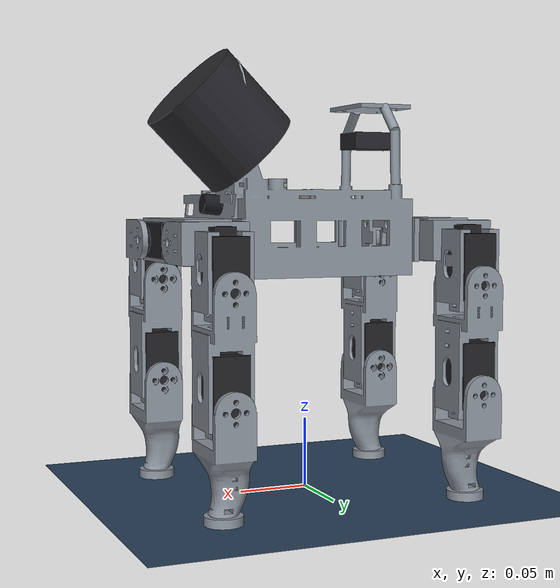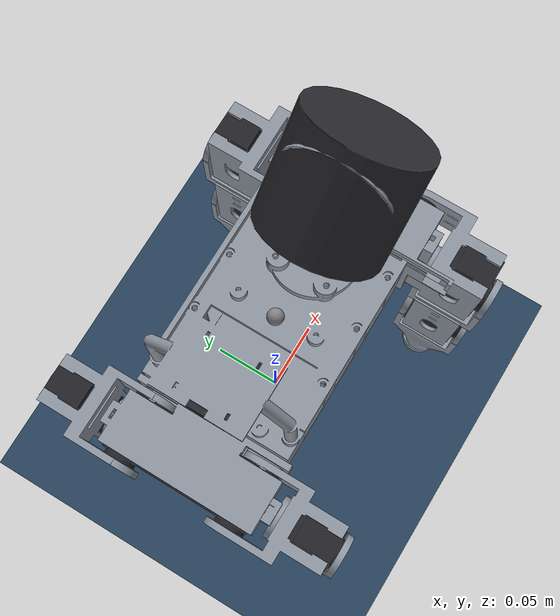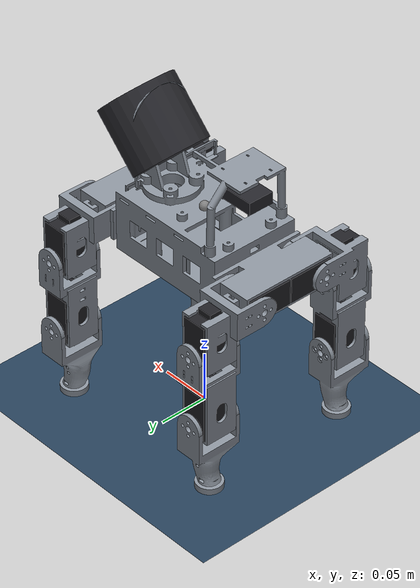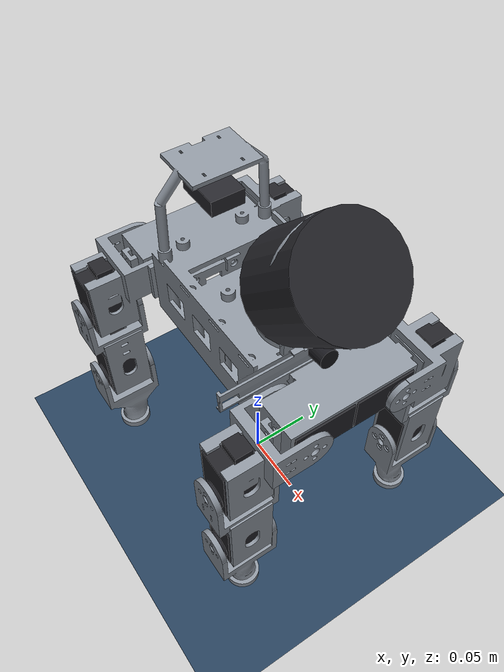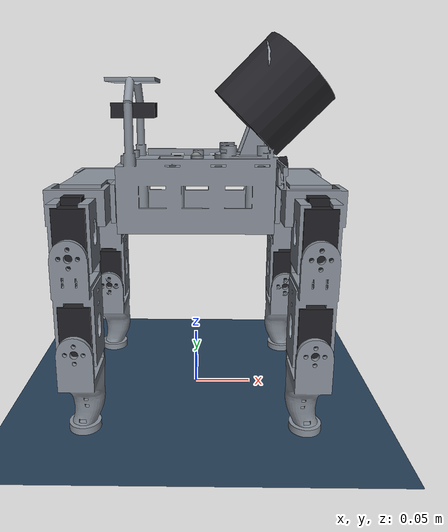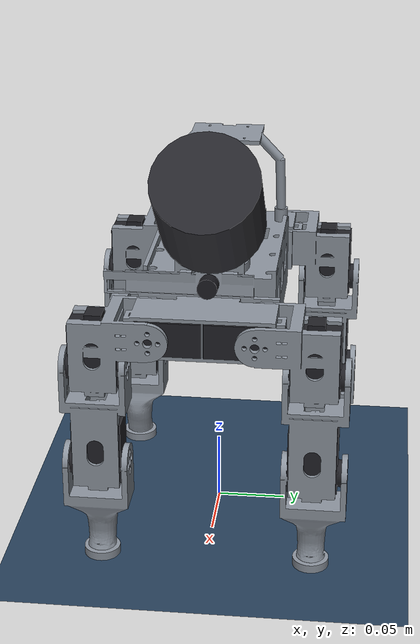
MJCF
<mujoco model="smalldog_scene">
  <option timestep="0.001" integrator="implicitfast" solver="Newton" tolerance="1e-8"/>
  <size memory="64M"/>

  <include file="defaults.xml"/>
  <include file="robot.xml"/>

  <visual>
    <headlight diffuse="0.6 0.6 0.6" ambient="0.35 0.35 0.35" specular="0 0 0"/>
    <rgba haze="0.15 0.25 0.35 1"/>
    <global azimuth="140" elevation="-20" offwidth="3840" offheight="2160"/>
  </visual>

  <asset>
    <texture type="skybox" builtin="gradient" rgb1="0.3 0.5 0.7" rgb2="0 0 0"
             width="512" height="3072"/>
    <texture type="2d" name="groundplane" builtin="checker" mark="edge"
             rgb1="0.2 0.3 0.4" rgb2="0.1 0.2 0.3" markrgb="0.8 0.8 0.8"
             width="300" height="300"/>
    <material name="groundplane" texture="groundplane" texuniform="true"
              texrepeat="5 5" reflectance="0.15"/>
  </asset>

  <worldbody>
    <light pos="0 0 2.5" dir="0 0 -1" directional="true"/>
    <geom name="floor" size="0 0 0.05" pos="0 0 0" type="plane" material="groundplane"
          condim="3" contype="1" conaffinity="15" friction="1.0 0.005 0.0001"/>
  </worldbody>
</mujoco>

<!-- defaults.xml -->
<mujoco>
  <default>
    <default class="mujoco">
      <joint frictionloss="0.184" armature="0.0165" damping="0.92"/>
      <position kp="40.9" dampratio="1" forcerange="-3.2 3.2"/>
      <default class="visual">
        <geom type="mesh" contype="0" conaffinity="0" group="2" rgba="0.55 0.58 0.62 1"/>
      </default>
      <default class="servo">
        <geom type="mesh" contype="0" conaffinity="0" group="2" rgba="0.13 0.13 0.15 1"/>
      </default>
      <default class="collision">
        <geom group="3" contype="4" conaffinity="1" rgba="0.9 0.2 0.2 0.3"/>
      </default>
      <default class="foot">
        <geom group="3" contype="2" conaffinity="1" condim="4"
              friction="1.2 0.002 0.001" priority="1"
              solref="0.008 1" solimp="0.95 0.99 0.001" rgba="0.15 0.15 0.15 1"/>
      </default>
    </default>
  </default>
</mujoco>

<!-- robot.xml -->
<mujoco model="smalldog">
  <!-- generated by smalldog_description/scripts/generate_model.py -->
  <compiler angle="radian" meshdir="../meshes" autolimits="true"/>
  <asset>
    <mesh name="base_link" file="base_link.stl" scale="0.001 0.001 0.001"/>
    <mesh name="fl_hip" file="fl_hip.stl" scale="0.001 0.001 0.001"/>
    <mesh name="fl_thigh" file="fl_thigh.stl" scale="0.001 0.001 0.001"/>
    <mesh name="fl_shin" file="fl_shin.stl" scale="0.001 0.001 0.001"/>
    <mesh name="fr_hip" file="fr_hip.stl" scale="0.001 0.001 0.001"/>
    <mesh name="fr_thigh" file="fr_thigh.stl" scale="0.001 0.001 0.001"/>
    <mesh name="fr_shin" file="fr_shin.stl" scale="0.001 0.001 0.001"/>
    <mesh name="rl_hip" file="rl_hip.stl" scale="0.001 0.001 0.001"/>
    <mesh name="rl_thigh" file="rl_thigh.stl" scale="0.001 0.001 0.001"/>
    <mesh name="rl_shin" file="rl_shin.stl" scale="0.001 0.001 0.001"/>
    <mesh name="rr_hip" file="rr_hip.stl" scale="0.001 0.001 0.001"/>
    <mesh name="rr_thigh" file="rr_thigh.stl" scale="0.001 0.001 0.001"/>
    <mesh name="rr_shin" file="rr_shin.stl" scale="0.001 0.001 0.001"/>
    <mesh name="fl_roll_servo" file="fl_roll_servo.stl" scale="0.001 0.001 0.001"/>
    <mesh name="fr_roll_servo" file="fr_roll_servo.stl" scale="0.001 0.001 0.001"/>
    <mesh name="rl_roll_servo" file="rl_roll_servo.stl" scale="0.001 0.001 0.001"/>
    <mesh name="rr_roll_servo" file="rr_roll_servo.stl" scale="0.001 0.001 0.001"/>
    <mesh name="fl_pitch_servo" file="fl_pitch_servo.stl" scale="0.001 0.001 0.001"/>
    <mesh name="fl_knee_servo" file="fl_knee_servo.stl" scale="0.001 0.001 0.001"/>
    <mesh name="fr_pitch_servo" file="fr_pitch_servo.stl" scale="0.001 0.001 0.001"/>
    <mesh name="fr_knee_servo" file="fr_knee_servo.stl" scale="0.001 0.001 0.001"/>
    <mesh name="rl_pitch_servo" file="rl_pitch_servo.stl" scale="0.001 0.001 0.001"/>
    <mesh name="rl_knee_servo" file="rl_knee_servo.stl" scale="0.001 0.001 0.001"/>
    <mesh name="rr_pitch_servo" file="rr_pitch_servo.stl" scale="0.001 0.001 0.001"/>
    <mesh name="rr_knee_servo" file="rr_knee_servo.stl" scale="0.001 0.001 0.001"/>
  </asset>
  <worldbody>
    <body name="base_link" pos="0 0 0.1807" childclass="mujoco">
      <freejoint name="base_freejoint"/>
      <inertial pos="0.008252 -0.000039 0.020861" mass="1.55858" fullinertia="0.00305822 0.00648436 0.00602368 0.00000641 -0.00077355 0.00000066"/>
      <geom class="visual" type="mesh" mesh="base_link"/>
      <geom class="servo" type="mesh" mesh="fl_roll_servo"/>
      <geom class="servo" type="mesh" mesh="fr_roll_servo"/>
      <geom class="servo" type="mesh" mesh="rl_roll_servo"/>
      <geom class="servo" type="mesh" mesh="rr_roll_servo"/>
      <geom class="collision" type="box" size="0.06300 0.04600 0.02700" pos="0.00000 0.00000 0.00200"/>
      <geom class="collision" type="box" size="0.10650 0.04911 0.01536" pos="0.00000 0.00000 0.00000"/>
      <site name="imu" pos="0 0 0.031" size="0.005"/>
      <site name="lidar" pos="0.0734663 0 0.0914663" quat="0.92388 0 0.382683 0" size="0.004" rgba="0.9 0.4 0.1 1"/>
      <geom name="lidar_body" type="cylinder" group="2" contype="0" conaffinity="0" size="0.0375 0.0325" pos="0.064981 0 0.082981" quat="0.92388 0 0.382683 0" rgba="0.15 0.15 0.17 1"/>
      <camera name="camera" pos="0.0787343 0 0.0257543" quat="-0.473147 -0.525483 0.525483 0.473147" fovy="52.23" resolution="3840 2160"/>
      <geom name="camera_body" type="cylinder" group="2" contype="0" conaffinity="0" size="0.007 0.0081" pos="0.0700322 0 0.0248397" quat="0.525483 0.473147 0.473147 0.525483" rgba="0.1 0.1 0.12 1"/>
      <site name="gps" pos="-0.05200 0.00000 0.07260" size="0.004" rgba="0.2 0.8 0.4 1"/>
      <geom name="gps_body" class="visual" type="box" size="0.01800 0.01300 0.00605" pos="-0.05200 0.00000 0.07105" rgba="0.15 0.15 0.17 1"/>
      <body name="fl_hip" pos="0.09000 0.03600 0.00000">
        <joint name="fl_roll" axis="1 0 0" range="-1.5408 1.5408"/>
        <inertial pos="0.000229 0.009229 -0.015242" mass="0.09016" fullinertia="0.00005182 0.00003286 0.00004063 -0.00000028 -0.00000031 0.00000062"/>
        <geom class="visual" type="mesh" mesh="fl_hip"/>
        <geom class="servo" type="mesh" mesh="fl_pitch_servo"/>
        <geom class="collision" type="box" size="0.01536 0.01650 0.02560" pos="0.00000 0.04000 -0.04750"/>
        <body name="fl_thigh" pos="0.00000 0.04000 -0.03000">
          <joint name="fl_pitch" axis="0 1 0" range="-1.5408 1.5408"/>
          <inertial pos="0.000016 0.000232 -0.053633" mass="0.09707" fullinertia="0.00006669 0.00005970 0.00002103 0.00000000 -0.00000002 -0.00000060"/>
          <geom class="visual" type="mesh" mesh="fl_thigh"/>
          <geom class="servo" type="mesh" mesh="fl_knee_servo"/>
          <geom class="collision" type="box" size="0.01536 0.01650 0.03500" pos="0.00000 0.00000 -0.04400"/>
          <body name="fl_shin" pos="0.00000 0.00000 -0.07500">
            <joint name="fl_knee" axis="0 1 0" range="-1.8899 1.8899"/>
            <inertial pos="-0.000765 0.000406 -0.040530" mass="0.04630" fullinertia="0.00003772 0.00003304 0.00001004 -0.00000002 -0.00000030 -0.00000038"/>
            <geom class="visual" type="mesh" mesh="fl_shin"/>
            <geom class="collision" type="capsule" size="0.01200" fromto="0.00000 0.00000 -0.00800 0.00000 0.00000 -0.06900"/>
            <geom name="fl_foot" class="foot" type="sphere" size="0.01300" pos="0.00000 0.00000 -0.08200"/>
            <site name="fl_foot_site" pos="0 0 -0.08200" size="0.01400"/>
          </body>
        </body>
      </body>
      <body name="fr_hip" pos="0.09000 -0.03600 0.00000">
        <joint name="fr_roll" axis="1 0 0" range="-1.5408 1.5408"/>
        <inertial pos="0.000229 -0.009229 -0.015242" mass="0.09016" fullinertia="0.00005182 0.00003286 0.00004063 0.00000028 -0.00000031 -0.00000062"/>
        <geom class="visual" type="mesh" mesh="fr_hip"/>
        <geom class="servo" type="mesh" mesh="fr_pitch_servo"/>
        <geom class="collision" type="box" size="0.01536 0.01650 0.02560" pos="0.00000 -0.04000 -0.04750"/>
        <body name="fr_thigh" pos="0.00000 -0.04000 -0.03000">
          <joint name="fr_pitch" axis="0 1 0" range="-1.5408 1.5408"/>
          <inertial pos="0.000016 -0.000232 -0.053633" mass="0.09707" fullinertia="0.00006669 0.00005970 0.00002103 -0.00000000 -0.00000002 0.00000060"/>
          <geom class="visual" type="mesh" mesh="fr_thigh"/>
          <geom class="servo" type="mesh" mesh="fr_knee_servo"/>
          <geom class="collision" type="box" size="0.01536 0.01650 0.03500" pos="0.00000 0.00000 -0.04400"/>
          <body name="fr_shin" pos="0.00000 0.00000 -0.07500">
            <joint name="fr_knee" axis="0 1 0" range="-1.8899 1.8899"/>
            <inertial pos="-0.000765 -0.000406 -0.040530" mass="0.04630" fullinertia="0.00003772 0.00003304 0.00001004 0.00000002 -0.00000030 0.00000038"/>
            <geom class="visual" type="mesh" mesh="fr_shin"/>
            <geom class="collision" type="capsule" size="0.01200" fromto="0.00000 0.00000 -0.00800 0.00000 0.00000 -0.06900"/>
            <geom name="fr_foot" class="foot" type="sphere" size="0.01300" pos="0.00000 0.00000 -0.08200"/>
            <site name="fr_foot_site" pos="0 0 -0.08200" size="0.01400"/>
          </body>
        </body>
      </body>
      <body name="rl_hip" pos="-0.09000 0.03600 0.00000">
        <joint name="rl_roll" axis="1 0 0" range="-1.5408 1.5408"/>
        <inertial pos="-0.000229 0.009229 -0.015242" mass="0.09016" fullinertia="0.00005182 0.00003286 0.00004063 0.00000028 0.00000031 0.00000062"/>
        <geom class="visual" type="mesh" mesh="rl_hip"/>
        <geom class="servo" type="mesh" mesh="rl_pitch_servo"/>
        <geom class="collision" type="box" size="0.01536 0.01650 0.02560" pos="0.00000 0.04000 -0.04750"/>
        <body name="rl_thigh" pos="0.00000 0.04000 -0.03000">
          <joint name="rl_pitch" axis="0 1 0" range="-1.5408 1.5408"/>
          <inertial pos="-0.000016 0.000232 -0.053633" mass="0.09707" fullinertia="0.00006669 0.00005970 0.00002103 -0.00000000 0.00000002 -0.00000060"/>
          <geom class="visual" type="mesh" mesh="rl_thigh"/>
          <geom class="servo" type="mesh" mesh="rl_knee_servo"/>
          <geom class="collision" type="box" size="0.01536 0.01650 0.03500" pos="0.00000 0.00000 -0.04400"/>
          <body name="rl_shin" pos="0.00000 0.00000 -0.07500">
            <joint name="rl_knee" axis="0 1 0" range="-1.8899 1.8899"/>
            <inertial pos="0.000765 0.000406 -0.040530" mass="0.04630" fullinertia="0.00003772 0.00003304 0.00001004 0.00000002 0.00000030 -0.00000038"/>
            <geom class="visual" type="mesh" mesh="rl_shin"/>
            <geom class="collision" type="capsule" size="0.01200" fromto="0.00000 0.00000 -0.00800 0.00000 0.00000 -0.06900"/>
            <geom name="rl_foot" class="foot" type="sphere" size="0.01300" pos="0.00000 0.00000 -0.08200"/>
            <site name="rl_foot_site" pos="0 0 -0.08200" size="0.01400"/>
          </body>
        </body>
      </body>
      <body name="rr_hip" pos="-0.09000 -0.03600 0.00000">
        <joint name="rr_roll" axis="1 0 0" range="-1.5408 1.5408"/>
        <inertial pos="-0.000229 -0.009229 -0.015242" mass="0.09016" fullinertia="0.00005182 0.00003286 0.00004063 -0.00000028 0.00000031 -0.00000062"/>
        <geom class="visual" type="mesh" mesh="rr_hip"/>
        <geom class="servo" type="mesh" mesh="rr_pitch_servo"/>
        <geom class="collision" type="box" size="0.01536 0.01650 0.02560" pos="0.00000 -0.04000 -0.04750"/>
        <body name="rr_thigh" pos="0.00000 -0.04000 -0.03000">
          <joint name="rr_pitch" axis="0 1 0" range="-1.5408 1.5408"/>
          <inertial pos="-0.000016 -0.000232 -0.053633" mass="0.09707" fullinertia="0.00006669 0.00005970 0.00002103 0.00000000 0.00000002 0.00000060"/>
          <geom class="visual" type="mesh" mesh="rr_thigh"/>
          <geom class="servo" type="mesh" mesh="rr_knee_servo"/>
          <geom class="collision" type="box" size="0.01536 0.01650 0.03500" pos="0.00000 0.00000 -0.04400"/>
          <body name="rr_shin" pos="0.00000 0.00000 -0.07500">
            <joint name="rr_knee" axis="0 1 0" range="-1.8899 1.8899"/>
            <inertial pos="0.000765 -0.000406 -0.040530" mass="0.04630" fullinertia="0.00003772 0.00003304 0.00001004 -0.00000002 0.00000030 0.00000038"/>
            <geom class="visual" type="mesh" mesh="rr_shin"/>
            <geom class="collision" type="capsule" size="0.01200" fromto="0.00000 0.00000 -0.00800 0.00000 0.00000 -0.06900"/>
            <geom name="rr_foot" class="foot" type="sphere" size="0.01300" pos="0.00000 0.00000 -0.08200"/>
            <site name="rr_foot_site" pos="0 0 -0.08200" size="0.01400"/>
          </body>
        </body>
      </body>
    </body>
  </worldbody>
  <actuator>
    <position class="mujoco" name="fl_roll" joint="fl_roll"/>
    <position class="mujoco" name="fl_pitch" joint="fl_pitch"/>
    <position class="mujoco" name="fl_knee" joint="fl_knee"/>
    <position class="mujoco" name="fr_roll" joint="fr_roll"/>
    <position class="mujoco" name="fr_pitch" joint="fr_pitch"/>
    <position class="mujoco" name="fr_knee" joint="fr_knee"/>
    <position class="mujoco" name="rl_roll" joint="rl_roll"/>
    <position class="mujoco" name="rl_pitch" joint="rl_pitch"/>
    <position class="mujoco" name="rl_knee" joint="rl_knee"/>
    <position class="mujoco" name="rr_roll" joint="rr_roll"/>
    <position class="mujoco" name="rr_pitch" joint="rr_pitch"/>
    <position class="mujoco" name="rr_knee" joint="rr_knee"/>
  </actuator>
  <sensor>
    <framequat name="imu_quat" objtype="site" objname="imu"/>
    <gyro name="imu_gyro" site="imu"/>
    <accelerometer name="imu_accel" site="imu"/>
    <touch name="fl_contact" site="fl_foot_site"/>
    <touch name="fr_contact" site="fr_foot_site"/>
    <touch name="rl_contact" site="rl_foot_site"/>
    <touch name="rr_contact" site="rr_foot_site"/>
  </sensor>
  <custom>
    <numeric name="lidar_cone" data="1.67552"/>
    <numeric name="lidar_rate" data="62340"/>
    <numeric name="lidar_range" data="0.05 30"/>
    <numeric name="lidar_sigma" data="0.02"/>
    <numeric name="lidar_spin" data="121.6 -75.1529"/>
    <numeric name="lidar_frame_hz" data="12"/>
    <numeric name="lidar_groups" data="1 1 0 1 1 1"/>
  </custom>
</mujoco>
